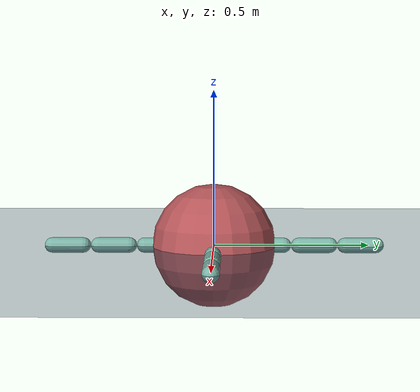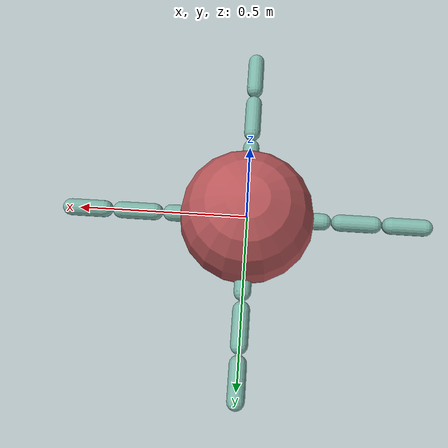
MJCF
<mujoco model="floor">
  <compiler boundmass="1.0000000000000001e-05" boundinertia="9.9999999999999994e-12" coordinate="local" angle="radian" eulerseq="xyz"/>
  <option timestep="0.002" cone="elliptic" noslip_iterations="5" noslip_tolerance="0"/>
  <visual>
    <headlight ambient="0.40000000000000002 0.40000000000000002 0.40000000000000002" diffuse="0.80000000000000004 0.80000000000000004 0.80000000000000004" specular="0.10000000000000001 0.10000000000000001 0.10000000000000001"/>
    <map znear="0.01"/>
    <scale forcewidth="0.01" contactwidth="0.059999999999999998" contactheight="0.01" jointwidth="0.01" framelength="0.29999999999999999" framewidth="0.01"/>
  </visual>
  <default>
    <default class="/"/>
    <default class="target/"/>
    <default class="morphology/"/>
  </default>
  <asset>
    <texture name="groundplane" type="2d" builtin="checker" rgb1="0.20000000000000001 0.29999999999999999 0.40000000000000002" rgb2="0.10000000000000001 0.20000000000000001 0.29999999999999999" mark="edge" markrgb="0.80000000000000004 0.80000000000000004 0.80000000000000004" width="200" height="200"/>
    <material name="groundplane" class="/" texture="groundplane" texrepeat="2 2" texuniform="true" reflectance="0.20000000000000001"/>
  </asset>
  <worldbody>
    <geom name="groundplane" class="/" type="plane" size="8 8 0.25" material="groundplane"/>
    <camera name="top_camera" class="/" fovy="10.058147163570894" pos="0 0 100" quat="1 0 0 0"/>
    <body name="target/">
      <site name="target/target_site" class="target/" type="sphere" rgba="0.71764705882352942 0.33725490196078434 0.34901960784313724 1" size="0.20000000000000001"/>
    </body>
    <body name="morphology/">
      <freejoint name="morphology/"/>
      <body name="morphology//unnamed_body_0">
        <body name="morphology/torso" pos="0 0 0" euler="0 0 0">
          <geom name="morphology//unnamed_geom_0" class="morphology/" type="sphere" size="0.10000000000000001" rgba="0.49019607843137253 0.70980392156862748 0.6588235294117647 1"/>
          <body name="morphology/arm_0" pos="0.10000000000000001 0 0" euler="0 0 0">
            <body name="morphology/arm_0_segment_0" pos="0 0 0" euler="0 0 0">
              <geom name="morphology/arm_0_segment_0_capsule" class="morphology/" type="capsule" size="0.025000000000000001 0.050000000000000003" rgba="0.49019607843137253 0.70980392156862748 0.6588235294117647 1" pos="0.075000000000000011 0 0" euler="0 1.5707963267948966 0"/>
              <joint name="morphology/arm_0_segment_0_in_plane_joint" class="morphology/" type="hinge" axis="0 0 1" limited="true" stiffness="0.10000000000000001" range="-0.3490658503988659 0.3490658503988659" damping="0.10000000000000001"/>
              <joint name="morphology/arm_0_segment_0_out_of_plane_joint" class="morphology/" type="hinge" axis="0 1 0" limited="true" stiffness="0.10000000000000001" range="-0.3490658503988659 0.3490658503988659" damping="0.10000000000000001"/>
              <body name="morphology/arm_0_segment_1" pos="0.15000000000000002 0 0" euler="0 0 0">
                <geom name="morphology/arm_0_segment_1_capsule" class="morphology/" type="capsule" size="0.025000000000000001 0.050000000000000003" rgba="0.49019607843137253 0.70980392156862748 0.6588235294117647 1" pos="0.075000000000000011 0 0" euler="0 1.5707963267948966 0"/>
                <joint name="morphology/arm_0_segment_1_in_plane_joint" class="morphology/" type="hinge" axis="0 0 1" limited="true" stiffness="0.10000000000000001" range="-0.3490658503988659 0.3490658503988659" damping="0.10000000000000001"/>
                <joint name="morphology/arm_0_segment_1_out_of_plane_joint" class="morphology/" type="hinge" axis="0 1 0" limited="true" stiffness="0.10000000000000001" range="-0.3490658503988659 0.3490658503988659" damping="0.10000000000000001"/>
                <body name="morphology/arm_0_segment_2" pos="0.15000000000000002 0 0" euler="0 0 0">
                  <geom name="morphology/arm_0_segment_2_capsule" class="morphology/" type="capsule" size="0.025000000000000001 0.050000000000000003" rgba="0.49019607843137253 0.70980392156862748 0.6588235294117647 1" pos="0.075000000000000011 0 0" euler="0 1.5707963267948966 0"/>
                  <joint name="morphology/arm_0_segment_2_in_plane_joint" class="morphology/" type="hinge" axis="0 0 1" limited="true" stiffness="0.10000000000000001" range="-0.3490658503988659 0.3490658503988659" damping="0.10000000000000001"/>
                  <joint name="morphology/arm_0_segment_2_out_of_plane_joint" class="morphology/" type="hinge" axis="0 1 0" limited="true" stiffness="0.10000000000000001" range="-0.3490658503988659 0.3490658503988659" damping="0.10000000000000001"/>
                </body>
              </body>
            </body>
          </body>
          <body name="morphology/arm_1" pos="6.1232339957367663e-18 0.10000000000000001 0" euler="0 0 1.5707963267948966">
            <body name="morphology/arm_1_segment_0" pos="0 0 0" euler="0 0 0">
              <geom name="morphology/arm_1_segment_0_capsule" class="morphology/" type="capsule" size="0.025000000000000001 0.050000000000000003" rgba="0.49019607843137253 0.70980392156862748 0.6588235294117647 1" pos="0.075000000000000011 0 0" euler="0 1.5707963267948966 0"/>
              <joint name="morphology/arm_1_segment_0_in_plane_joint" class="morphology/" type="hinge" axis="0 0 1" limited="true" stiffness="0.10000000000000001" range="-0.3490658503988659 0.3490658503988659" damping="0.10000000000000001"/>
              <joint name="morphology/arm_1_segment_0_out_of_plane_joint" class="morphology/" type="hinge" axis="0 1 0" limited="true" stiffness="0.10000000000000001" range="-0.3490658503988659 0.3490658503988659" damping="0.10000000000000001"/>
              <body name="morphology/arm_1_segment_1" pos="0.15000000000000002 0 0" euler="0 0 0">
                <geom name="morphology/arm_1_segment_1_capsule" class="morphology/" type="capsule" size="0.025000000000000001 0.050000000000000003" rgba="0.49019607843137253 0.70980392156862748 0.6588235294117647 1" pos="0.075000000000000011 0 0" euler="0 1.5707963267948966 0"/>
                <joint name="morphology/arm_1_segment_1_in_plane_joint" class="morphology/" type="hinge" axis="0 0 1" limited="true" stiffness="0.10000000000000001" range="-0.3490658503988659 0.3490658503988659" damping="0.10000000000000001"/>
                <joint name="morphology/arm_1_segment_1_out_of_plane_joint" class="morphology/" type="hinge" axis="0 1 0" limited="true" stiffness="0.10000000000000001" range="-0.3490658503988659 0.3490658503988659" damping="0.10000000000000001"/>
                <body name="morphology/arm_1_segment_2" pos="0.15000000000000002 0 0" euler="0 0 0">
                  <geom name="morphology/arm_1_segment_2_capsule" class="morphology/" type="capsule" size="0.025000000000000001 0.050000000000000003" rgba="0.49019607843137253 0.70980392156862748 0.6588235294117647 1" pos="0.075000000000000011 0 0" euler="0 1.5707963267948966 0"/>
                  <joint name="morphology/arm_1_segment_2_in_plane_joint" class="morphology/" type="hinge" axis="0 0 1" limited="true" stiffness="0.10000000000000001" range="-0.3490658503988659 0.3490658503988659" damping="0.10000000000000001"/>
                  <joint name="morphology/arm_1_segment_2_out_of_plane_joint" class="morphology/" type="hinge" axis="0 1 0" limited="true" stiffness="0.10000000000000001" range="-0.3490658503988659 0.3490658503988659" damping="0.10000000000000001"/>
                </body>
              </body>
            </body>
          </body>
          <body name="morphology/arm_2" pos="-0.10000000000000001 1.2246467991473533e-17 0" euler="0 0 3.1415926535897931">
            <body name="morphology/arm_2_segment_0" pos="0 0 0" euler="0 0 0">
              <geom name="morphology/arm_2_segment_0_capsule" class="morphology/" type="capsule" size="0.025000000000000001 0.050000000000000003" rgba="0.49019607843137253 0.70980392156862748 0.6588235294117647 1" pos="0.075000000000000011 0 0" euler="0 1.5707963267948966 0"/>
              <joint name="morphology/arm_2_segment_0_in_plane_joint" class="morphology/" type="hinge" axis="0 0 1" limited="true" stiffness="0.10000000000000001" range="-0.3490658503988659 0.3490658503988659" damping="0.10000000000000001"/>
              <joint name="morphology/arm_2_segment_0_out_of_plane_joint" class="morphology/" type="hinge" axis="0 1 0" limited="true" stiffness="0.10000000000000001" range="-0.3490658503988659 0.3490658503988659" damping="0.10000000000000001"/>
              <body name="morphology/arm_2_segment_1" pos="0.15000000000000002 0 0" euler="0 0 0">
                <geom name="morphology/arm_2_segment_1_capsule" class="morphology/" type="capsule" size="0.025000000000000001 0.050000000000000003" rgba="0.49019607843137253 0.70980392156862748 0.6588235294117647 1" pos="0.075000000000000011 0 0" euler="0 1.5707963267948966 0"/>
                <joint name="morphology/arm_2_segment_1_in_plane_joint" class="morphology/" type="hinge" axis="0 0 1" limited="true" stiffness="0.10000000000000001" range="-0.3490658503988659 0.3490658503988659" damping="0.10000000000000001"/>
                <joint name="morphology/arm_2_segment_1_out_of_plane_joint" class="morphology/" type="hinge" axis="0 1 0" limited="true" stiffness="0.10000000000000001" range="-0.3490658503988659 0.3490658503988659" damping="0.10000000000000001"/>
                <body name="morphology/arm_2_segment_2" pos="0.15000000000000002 0 0" euler="0 0 0">
                  <geom name="morphology/arm_2_segment_2_capsule" class="morphology/" type="capsule" size="0.025000000000000001 0.050000000000000003" rgba="0.49019607843137253 0.70980392156862748 0.6588235294117647 1" pos="0.075000000000000011 0 0" euler="0 1.5707963267948966 0"/>
                  <joint name="morphology/arm_2_segment_2_in_plane_joint" class="morphology/" type="hinge" axis="0 0 1" limited="true" stiffness="0.10000000000000001" range="-0.3490658503988659 0.3490658503988659" damping="0.10000000000000001"/>
                  <joint name="morphology/arm_2_segment_2_out_of_plane_joint" class="morphology/" type="hinge" axis="0 1 0" limited="true" stiffness="0.10000000000000001" range="-0.3490658503988659 0.3490658503988659" damping="0.10000000000000001"/>
                </body>
              </body>
            </body>
          </body>
          <body name="morphology/arm_3" pos="-1.8369701987210297e-17 -0.10000000000000001 0" euler="0 0 4.7123889803846897">
            <body name="morphology/arm_3_segment_0" pos="0 0 0" euler="0 0 0">
              <geom name="morphology/arm_3_segment_0_capsule" class="morphology/" type="capsule" size="0.025000000000000001 0.050000000000000003" rgba="0.49019607843137253 0.70980392156862748 0.6588235294117647 1" pos="0.075000000000000011 0 0" euler="0 1.5707963267948966 0"/>
              <joint name="morphology/arm_3_segment_0_in_plane_joint" class="morphology/" type="hinge" axis="0 0 1" limited="true" stiffness="0.10000000000000001" range="-0.3490658503988659 0.3490658503988659" damping="0.10000000000000001"/>
              <joint name="morphology/arm_3_segment_0_out_of_plane_joint" class="morphology/" type="hinge" axis="0 1 0" limited="true" stiffness="0.10000000000000001" range="-0.3490658503988659 0.3490658503988659" damping="0.10000000000000001"/>
              <body name="morphology/arm_3_segment_1" pos="0.15000000000000002 0 0" euler="0 0 0">
                <geom name="morphology/arm_3_segment_1_capsule" class="morphology/" type="capsule" size="0.025000000000000001 0.050000000000000003" rgba="0.49019607843137253 0.70980392156862748 0.6588235294117647 1" pos="0.075000000000000011 0 0" euler="0 1.5707963267948966 0"/>
                <joint name="morphology/arm_3_segment_1_in_plane_joint" class="morphology/" type="hinge" axis="0 0 1" limited="true" stiffness="0.10000000000000001" range="-0.3490658503988659 0.3490658503988659" damping="0.10000000000000001"/>
                <joint name="morphology/arm_3_segment_1_out_of_plane_joint" class="morphology/" type="hinge" axis="0 1 0" limited="true" stiffness="0.10000000000000001" range="-0.3490658503988659 0.3490658503988659" damping="0.10000000000000001"/>
                <body name="morphology/arm_3_segment_2" pos="0.15000000000000002 0 0" euler="0 0 0">
                  <geom name="morphology/arm_3_segment_2_capsule" class="morphology/" type="capsule" size="0.025000000000000001 0.050000000000000003" rgba="0.49019607843137253 0.70980392156862748 0.6588235294117647 1" pos="0.075000000000000011 0 0" euler="0 1.5707963267948966 0"/>
                  <joint name="morphology/arm_3_segment_2_in_plane_joint" class="morphology/" type="hinge" axis="0 0 1" limited="true" stiffness="0.10000000000000001" range="-0.3490658503988659 0.3490658503988659" damping="0.10000000000000001"/>
                  <joint name="morphology/arm_3_segment_2_out_of_plane_joint" class="morphology/" type="hinge" axis="0 1 0" limited="true" stiffness="0.10000000000000001" range="-0.3490658503988659 0.3490658503988659" damping="0.10000000000000001"/>
                </body>
              </body>
            </body>
          </body>
          <camera name="morphology/side_camera" class="morphology/" mode="track" pos="0 -5 6" quat="0.93969262078590843 0.34202014332566871 0 0"/>
        </body>
      </body>
    </body>
  </worldbody>
  <actuator>
    <position name="morphology/arm_0_segment_0_in_plane_joint_p_control" class="morphology/" ctrllimited="true" ctrlrange="-0.3490658503988659 0.3490658503988659" joint="morphology/arm_0_segment_0_in_plane_joint" kp="10"/>
    <position name="morphology/arm_0_segment_0_out_of_plane_joint_p_control" class="morphology/" ctrllimited="true" ctrlrange="-0.3490658503988659 0.3490658503988659" joint="morphology/arm_0_segment_0_out_of_plane_joint" kp="10"/>
    <position name="morphology/arm_0_segment_1_in_plane_joint_p_control" class="morphology/" ctrllimited="true" ctrlrange="-0.3490658503988659 0.3490658503988659" joint="morphology/arm_0_segment_1_in_plane_joint" kp="10"/>
    <position name="morphology/arm_0_segment_1_out_of_plane_joint_p_control" class="morphology/" ctrllimited="true" ctrlrange="-0.3490658503988659 0.3490658503988659" joint="morphology/arm_0_segment_1_out_of_plane_joint" kp="10"/>
    <position name="morphology/arm_0_segment_2_in_plane_joint_p_control" class="morphology/" ctrllimited="true" ctrlrange="-0.3490658503988659 0.3490658503988659" joint="morphology/arm_0_segment_2_in_plane_joint" kp="10"/>
    <position name="morphology/arm_0_segment_2_out_of_plane_joint_p_control" class="morphology/" ctrllimited="true" ctrlrange="-0.3490658503988659 0.3490658503988659" joint="morphology/arm_0_segment_2_out_of_plane_joint" kp="10"/>
    <position name="morphology/arm_1_segment_0_in_plane_joint_p_control" class="morphology/" ctrllimited="true" ctrlrange="-0.3490658503988659 0.3490658503988659" joint="morphology/arm_1_segment_0_in_plane_joint" kp="10"/>
    <position name="morphology/arm_1_segment_0_out_of_plane_joint_p_control" class="morphology/" ctrllimited="true" ctrlrange="-0.3490658503988659 0.3490658503988659" joint="morphology/arm_1_segment_0_out_of_plane_joint" kp="10"/>
    <position name="morphology/arm_1_segment_1_in_plane_joint_p_control" class="morphology/" ctrllimited="true" ctrlrange="-0.3490658503988659 0.3490658503988659" joint="morphology/arm_1_segment_1_in_plane_joint" kp="10"/>
    <position name="morphology/arm_1_segment_1_out_of_plane_joint_p_control" class="morphology/" ctrllimited="true" ctrlrange="-0.3490658503988659 0.3490658503988659" joint="morphology/arm_1_segment_1_out_of_plane_joint" kp="10"/>
    <position name="morphology/arm_1_segment_2_in_plane_joint_p_control" class="morphology/" ctrllimited="true" ctrlrange="-0.3490658503988659 0.3490658503988659" joint="morphology/arm_1_segment_2_in_plane_joint" kp="10"/>
    <position name="morphology/arm_1_segment_2_out_of_plane_joint_p_control" class="morphology/" ctrllimited="true" ctrlrange="-0.3490658503988659 0.3490658503988659" joint="morphology/arm_1_segment_2_out_of_plane_joint" kp="10"/>
    <position name="morphology/arm_2_segment_0_in_plane_joint_p_control" class="morphology/" ctrllimited="true" ctrlrange="-0.3490658503988659 0.3490658503988659" joint="morphology/arm_2_segment_0_in_plane_joint" kp="10"/>
    <position name="morphology/arm_2_segment_0_out_of_plane_joint_p_control" class="morphology/" ctrllimited="true" ctrlrange="-0.3490658503988659 0.3490658503988659" joint="morphology/arm_2_segment_0_out_of_plane_joint" kp="10"/>
    <position name="morphology/arm_2_segment_1_in_plane_joint_p_control" class="morphology/" ctrllimited="true" ctrlrange="-0.3490658503988659 0.3490658503988659" joint="morphology/arm_2_segment_1_in_plane_joint" kp="10"/>
    <position name="morphology/arm_2_segment_1_out_of_plane_joint_p_control" class="morphology/" ctrllimited="true" ctrlrange="-0.3490658503988659 0.3490658503988659" joint="morphology/arm_2_segment_1_out_of_plane_joint" kp="10"/>
    <position name="morphology/arm_2_segment_2_in_plane_joint_p_control" class="morphology/" ctrllimited="true" ctrlrange="-0.3490658503988659 0.3490658503988659" joint="morphology/arm_2_segment_2_in_plane_joint" kp="10"/>
    <position name="morphology/arm_2_segment_2_out_of_plane_joint_p_control" class="morphology/" ctrllimited="true" ctrlrange="-0.3490658503988659 0.3490658503988659" joint="morphology/arm_2_segment_2_out_of_plane_joint" kp="10"/>
    <position name="morphology/arm_3_segment_0_in_plane_joint_p_control" class="morphology/" ctrllimited="true" ctrlrange="-0.3490658503988659 0.3490658503988659" joint="morphology/arm_3_segment_0_in_plane_joint" kp="10"/>
    <position name="morphology/arm_3_segment_0_out_of_plane_joint_p_control" class="morphology/" ctrllimited="true" ctrlrange="-0.3490658503988659 0.3490658503988659" joint="morphology/arm_3_segment_0_out_of_plane_joint" kp="10"/>
    <position name="morphology/arm_3_segment_1_in_plane_joint_p_control" class="morphology/" ctrllimited="true" ctrlrange="-0.3490658503988659 0.3490658503988659" joint="morphology/arm_3_segment_1_in_plane_joint" kp="10"/>
    <position name="morphology/arm_3_segment_1_out_of_plane_joint_p_control" class="morphology/" ctrllimited="true" ctrlrange="-0.3490658503988659 0.3490658503988659" joint="morphology/arm_3_segment_1_out_of_plane_joint" kp="10"/>
    <position name="morphology/arm_3_segment_2_in_plane_joint_p_control" class="morphology/" ctrllimited="true" ctrlrange="-0.3490658503988659 0.3490658503988659" joint="morphology/arm_3_segment_2_in_plane_joint" kp="10"/>
    <position name="morphology/arm_3_segment_2_out_of_plane_joint_p_control" class="morphology/" ctrllimited="true" ctrlrange="-0.3490658503988659 0.3490658503988659" joint="morphology/arm_3_segment_2_out_of_plane_joint" kp="10"/>
  </actuator>
  <sensor>
    <framequat name="morphology/torso_framequat" objtype="body" objname="morphology/torso"/>
    <framelinvel name="morphology/torso_framelinvel" objtype="body" objname="morphology/torso"/>
    <frameangvel name="morphology/torso_frameangvel" objtype="body" objname="morphology/torso"/>
    <jointpos name="morphology/arm_0_segment_0_in_plane_joint_jointpos_sensor" joint="morphology/arm_0_segment_0_in_plane_joint"/>
    <jointvel name="morphology/arm_0_segment_0_in_plane_joint_jointvel_sensor" joint="morphology/arm_0_segment_0_in_plane_joint"/>
    <jointpos name="morphology/arm_0_segment_0_out_of_plane_joint_jointpos_sensor" joint="morphology/arm_0_segment_0_out_of_plane_joint"/>
    <jointvel name="morphology/arm_0_segment_0_out_of_plane_joint_jointvel_sensor" joint="morphology/arm_0_segment_0_out_of_plane_joint"/>
    <jointpos name="morphology/arm_0_segment_1_in_plane_joint_jointpos_sensor" joint="morphology/arm_0_segment_1_in_plane_joint"/>
    <jointvel name="morphology/arm_0_segment_1_in_plane_joint_jointvel_sensor" joint="morphology/arm_0_segment_1_in_plane_joint"/>
    <jointpos name="morphology/arm_0_segment_1_out_of_plane_joint_jointpos_sensor" joint="morphology/arm_0_segment_1_out_of_plane_joint"/>
    <jointvel name="morphology/arm_0_segment_1_out_of_plane_joint_jointvel_sensor" joint="morphology/arm_0_segment_1_out_of_plane_joint"/>
    <jointpos name="morphology/arm_0_segment_2_in_plane_joint_jointpos_sensor" joint="morphology/arm_0_segment_2_in_plane_joint"/>
    <jointvel name="morphology/arm_0_segment_2_in_plane_joint_jointvel_sensor" joint="morphology/arm_0_segment_2_in_plane_joint"/>
    <jointpos name="morphology/arm_0_segment_2_out_of_plane_joint_jointpos_sensor" joint="morphology/arm_0_segment_2_out_of_plane_joint"/>
    <jointvel name="morphology/arm_0_segment_2_out_of_plane_joint_jointvel_sensor" joint="morphology/arm_0_segment_2_out_of_plane_joint"/>
    <jointpos name="morphology/arm_1_segment_0_in_plane_joint_jointpos_sensor" joint="morphology/arm_1_segment_0_in_plane_joint"/>
    <jointvel name="morphology/arm_1_segment_0_in_plane_joint_jointvel_sensor" joint="morphology/arm_1_segment_0_in_plane_joint"/>
    <jointpos name="morphology/arm_1_segment_0_out_of_plane_joint_jointpos_sensor" joint="morphology/arm_1_segment_0_out_of_plane_joint"/>
    <jointvel name="morphology/arm_1_segment_0_out_of_plane_joint_jointvel_sensor" joint="morphology/arm_1_segment_0_out_of_plane_joint"/>
    <jointpos name="morphology/arm_1_segment_1_in_plane_joint_jointpos_sensor" joint="morphology/arm_1_segment_1_in_plane_joint"/>
    <jointvel name="morphology/arm_1_segment_1_in_plane_joint_jointvel_sensor" joint="morphology/arm_1_segment_1_in_plane_joint"/>
    <jointpos name="morphology/arm_1_segment_1_out_of_plane_joint_jointpos_sensor" joint="morphology/arm_1_segment_1_out_of_plane_joint"/>
    <jointvel name="morphology/arm_1_segment_1_out_of_plane_joint_jointvel_sensor" joint="morphology/arm_1_segment_1_out_of_plane_joint"/>
    <jointpos name="morphology/arm_1_segment_2_in_plane_joint_jointpos_sensor" joint="morphology/arm_1_segment_2_in_plane_joint"/>
    <jointvel name="morphology/arm_1_segment_2_in_plane_joint_jointvel_sensor" joint="morphology/arm_1_segment_2_in_plane_joint"/>
    <jointpos name="morphology/arm_1_segment_2_out_of_plane_joint_jointpos_sensor" joint="morphology/arm_1_segment_2_out_of_plane_joint"/>
    <jointvel name="morphology/arm_1_segment_2_out_of_plane_joint_jointvel_sensor" joint="morphology/arm_1_segment_2_out_of_plane_joint"/>
    <jointpos name="morphology/arm_2_segment_0_in_plane_joint_jointpos_sensor" joint="morphology/arm_2_segment_0_in_plane_joint"/>
    <jointvel name="morphology/arm_2_segment_0_in_plane_joint_jointvel_sensor" joint="morphology/arm_2_segment_0_in_plane_joint"/>
    <jointpos name="morphology/arm_2_segment_0_out_of_plane_joint_jointpos_sensor" joint="morphology/arm_2_segment_0_out_of_plane_joint"/>
    <jointvel name="morphology/arm_2_segment_0_out_of_plane_joint_jointvel_sensor" joint="morphology/arm_2_segment_0_out_of_plane_joint"/>
    <jointpos name="morphology/arm_2_segment_1_in_plane_joint_jointpos_sensor" joint="morphology/arm_2_segment_1_in_plane_joint"/>
    <jointvel name="morphology/arm_2_segment_1_in_plane_joint_jointvel_sensor" joint="morphology/arm_2_segment_1_in_plane_joint"/>
    <jointpos name="morphology/arm_2_segment_1_out_of_plane_joint_jointpos_sensor" joint="morphology/arm_2_segment_1_out_of_plane_joint"/>
    <jointvel name="morphology/arm_2_segment_1_out_of_plane_joint_jointvel_sensor" joint="morphology/arm_2_segment_1_out_of_plane_joint"/>
    <jointpos name="morphology/arm_2_segment_2_in_plane_joint_jointpos_sensor" joint="morphology/arm_2_segment_2_in_plane_joint"/>
    <jointvel name="morphology/arm_2_segment_2_in_plane_joint_jointvel_sensor" joint="morphology/arm_2_segment_2_in_plane_joint"/>
    <jointpos name="morphology/arm_2_segment_2_out_of_plane_joint_jointpos_sensor" joint="morphology/arm_2_segment_2_out_of_plane_joint"/>
    <jointvel name="morphology/arm_2_segment_2_out_of_plane_joint_jointvel_sensor" joint="morphology/arm_2_segment_2_out_of_plane_joint"/>
    <jointpos name="morphology/arm_3_segment_0_in_plane_joint_jointpos_sensor" joint="morphology/arm_3_segment_0_in_plane_joint"/>
    <jointvel name="morphology/arm_3_segment_0_in_plane_joint_jointvel_sensor" joint="morphology/arm_3_segment_0_in_plane_joint"/>
    <jointpos name="morphology/arm_3_segment_0_out_of_plane_joint_jointpos_sensor" joint="morphology/arm_3_segment_0_out_of_plane_joint"/>
    <jointvel name="morphology/arm_3_segment_0_out_of_plane_joint_jointvel_sensor" joint="morphology/arm_3_segment_0_out_of_plane_joint"/>
    <jointpos name="morphology/arm_3_segment_1_in_plane_joint_jointpos_sensor" joint="morphology/arm_3_segment_1_in_plane_joint"/>
    <jointvel name="morphology/arm_3_segment_1_in_plane_joint_jointvel_sensor" joint="morphology/arm_3_segment_1_in_plane_joint"/>
    <jointpos name="morphology/arm_3_segment_1_out_of_plane_joint_jointpos_sensor" joint="morphology/arm_3_segment_1_out_of_plane_joint"/>
    <jointvel name="morphology/arm_3_segment_1_out_of_plane_joint_jointvel_sensor" joint="morphology/arm_3_segment_1_out_of_plane_joint"/>
    <jointpos name="morphology/arm_3_segment_2_in_plane_joint_jointpos_sensor" joint="morphology/arm_3_segment_2_in_plane_joint"/>
    <jointvel name="morphology/arm_3_segment_2_in_plane_joint_jointvel_sensor" joint="morphology/arm_3_segment_2_in_plane_joint"/>
    <jointpos name="morphology/arm_3_segment_2_out_of_plane_joint_jointpos_sensor" joint="morphology/arm_3_segment_2_out_of_plane_joint"/>
    <jointvel name="morphology/arm_3_segment_2_out_of_plane_joint_jointvel_sensor" joint="morphology/arm_3_segment_2_out_of_plane_joint"/>
  </sensor>
</mujoco>
